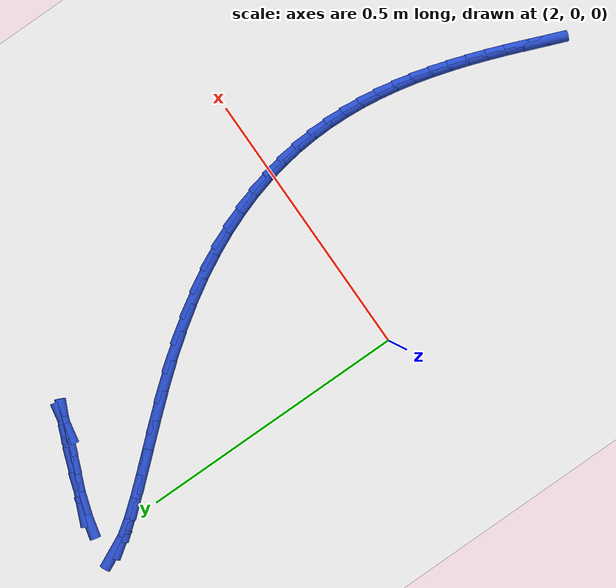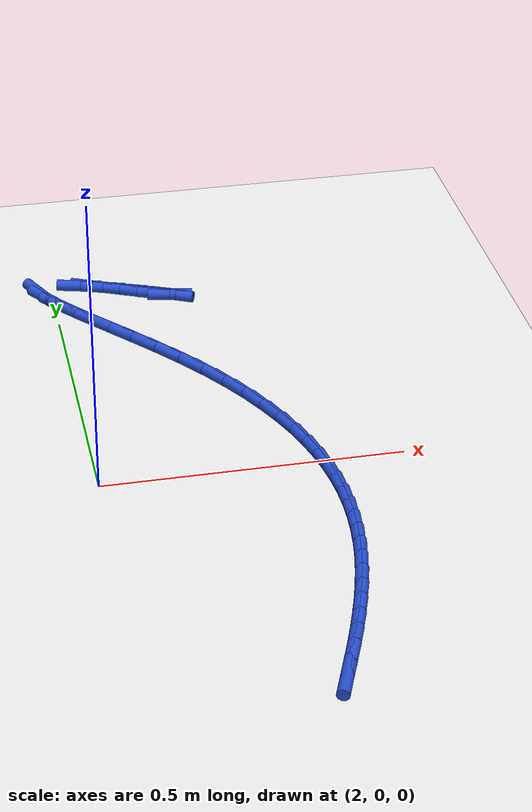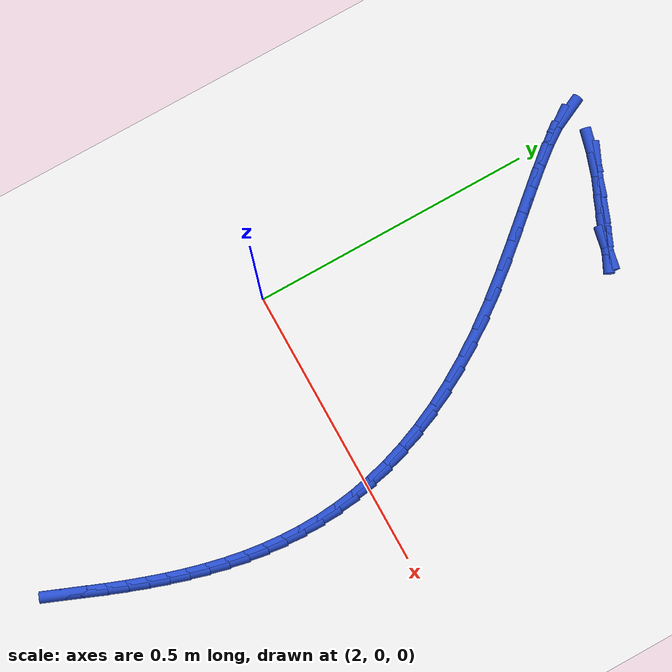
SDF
<sdf version="1.6">
 <world name="default">
  <model name="ground_plane">
   <static>1</static>
   <link name="link">
    <collision name="collision">
     <geometry><plane><normal>0 0 1</normal><size>100 100</size></plane></geometry>
     <surface><friction><ode><mu>100</mu><mu2>50</mu2></ode></friction></surface>
    </collision>
    <visual name="visual">
     <cast_shadows>0</cast_shadows>
     <geometry><plane><normal>0 0 1</normal><size>100 100</size></plane></geometry>
     <material>
      <script><uri>file://media/materials/scripts/gazebo.material</uri><name>Gazebo/WhiteGlow</name></script>
     </material>
    </visual>
   </link>
  </model>
  <model name="line">
   <link name="link_110">
    <pose>2.073734183545537 0.6070631061232256 0.01 0 1.57 -0.4170276419890811</pose>
    <collision name="collision">
     <geometry><cylinder><radius>0.01</radius><length>0.08</length></cylinder></geometry>
    </collision>
    <visual name="visual">
     <material>
      <script><name>Gazebo/Blue</name><uri>file://media/materials/scripts/gazebo.material</uri></script>
     </material>
     <geometry><cylinder><radius>0.01</radius><length>0.08</length></cylinder></geometry>
    </visual>
   </link>
   <link name="link_111">
    <pose>2.120151989857904 0.5864994546362606 0.01 0 1.57 -0.4030117801642071</pose>
    <collision name="collision">
     <geometry><cylinder><radius>0.01</radius><length>0.08</length></cylinder></geometry>
    </collision>
    <visual name="visual">
     <material>
      <script><name>Gazebo/Blue</name><uri>file://media/materials/scripts/gazebo.material</uri></script>
     </material>
     <geometry><cylinder><radius>0.01</radius><length>0.08</length></cylinder></geometry>
    </visual>
   </link>
   <link name="link_112">
    <pose>2.1596995131612777 0.5696384509629089 0.01 0 1.57 -0.3880269745320749</pose>
    <collision name="collision">
     <geometry><cylinder><radius>0.01</radius><length>0.08</length></cylinder></geometry>
    </collision>
    <visual name="visual">
     <material>
      <script><name>Gazebo/Blue</name><uri>file://media/materials/scripts/gazebo.material</uri></script>
     </material>
     <geometry><cylinder><radius>0.01</radius><length>0.08</length></cylinder></geometry>
    </visual>
   </link>
   <link name="link_113">
    <pose>2.1898419861026137 0.5573177036573054 0.01 0 1.57 -0.3643884784873693</pose>
    <collision name="collision">
     <geometry><cylinder><radius>0.01</radius><length>0.08</length></cylinder></geometry>
    </collision>
    <visual name="visual">
     <material>
      <script><name>Gazebo/Blue</name><uri>file://media/materials/scripts/gazebo.material</uri></script>
     </material>
     <geometry><cylinder><radius>0.01</radius><length>0.08</length></cylinder></geometry>
    </visual>
   </link>
   <link name="link_114">
    <pose>2.2080446413288626 0.5503748212735843 0.01 0 1.57 -0.19269574165638942</pose>
    <collision name="collision">
     <geometry><cylinder><radius>0.01</radius><length>0.08</length></cylinder></geometry>
    </collision>
    <visual name="visual">
     <material>
      <script><name>Gazebo/Blue</name><uri>file://media/materials/scripts/gazebo.material</uri></script>
     </material>
     <geometry><cylinder><radius>0.01</radius><length>0.08</length></cylinder></geometry>
    </visual>
   </link>
   <link name="link_115">
    <pose>2.211772711486979 0.5496474123658807 0.01 0 1.57 -0.4450251546157332</pose>
    <collision name="collision">
     <geometry><cylinder><radius>0.01</radius><length>0.08</length></cylinder></geometry>
    </collision>
    <visual name="visual">
     <material>
      <script><name>Gazebo/Blue</name><uri>file://media/materials/scripts/gazebo.material</uri></script>
     </material>
     <geometry><cylinder><radius>0.01</radius><length>0.08</length></cylinder></geometry>
    </visual>
   </link>
   <link name="link_116">
    <pose>2.198806116004149 0.555831623108319 0.01 0 1.57 -0.4061232374616735</pose>
    <collision name="collision">
     <geometry><cylinder><radius>0.01</radius><length>0.08</length></cylinder></geometry>
    </collision>
    <visual name="visual">
     <material>
      <script><name>Gazebo/Blue</name><uri>file://media/materials/scripts/gazebo.material</uri></script>
     </material>
     <geometry><cylinder><radius>0.01</radius><length>0.08</length></cylinder></geometry>
    </visual>
   </link>
   <link name="link_117">
    <pose>2.17113150740829 0.5677325304789995 0.01 0 1.57 -0.3831711092277104</pose>
    <collision name="collision">
     <geometry><cylinder><radius>0.01</radius><length>0.08</length></cylinder></geometry>
    </collision>
    <visual name="visual">
     <material>
      <script><name>Gazebo/Blue</name><uri>file://media/materials/scripts/gazebo.material</uri></script>
     </material>
     <geometry><cylinder><radius>0.01</radius><length>0.08</length></cylinder></geometry>
    </visual>
   </link>
   <link name="link_118">
    <pose>2.133734971195618 0.5828068646139323 0.01 0 1.57 -0.3566858198810598</pose>
    <collision name="collision">
     <geometry><cylinder><radius>0.01</radius><length>0.08</length></cylinder></geometry>
    </collision>
    <visual name="visual">
     <material>
      <script><name>Gazebo/Blue</name><uri>file://media/materials/scripts/gazebo.material</uri></script>
     </material>
     <geometry><cylinder><radius>0.01</radius><length>0.08</length></cylinder></geometry>
    </visual>
   </link>
   <link name="link_119">
    <pose>2.0916671253317394 0.5984823461155788 0.01 0 1.57 -0.3176035053585841</pose>
    <collision name="collision">
     <geometry><cylinder><radius>0.01</radius><length>0.08</length></cylinder></geometry>
    </collision>
    <visual name="visual">
     <material>
      <script><name>Gazebo/Blue</name><uri>file://media/materials/scripts/gazebo.material</uri></script>
     </material>
     <geometry><cylinder><radius>0.01</radius><length>0.08</length></cylinder></geometry>
    </visual>
   </link>
   <link name="link_120">
    <pose>2.0499785877822605 0.612186695586401 0.01 0 1.57 -0.2474764039259218</pose>
    <collision name="collision">
     <geometry><cylinder><radius>0.01</radius><length>0.08</length></cylinder></geometry>
    </collision>
    <visual name="visual">
     <material>
      <script><name>Gazebo/Blue</name><uri>file://media/materials/scripts/gazebo.material</uri></script>
     </material>
     <geometry><cylinder><radius>0.01</radius><length>0.08</length></cylinder></geometry>
    </visual>
   </link>
   <link name="link_124">
    <pose>1.975263911949227 0.6025011545360595 0.01 0 1.57 -1.1264479691737943</pose>
    <collision name="collision">
     <geometry><cylinder><radius>0.01</radius><length>0.08</length></cylinder></geometry>
    </collision>
    <visual name="visual">
     <material>
      <script><name>Gazebo/Blue</name><uri>file://media/materials/scripts/gazebo.material</uri></script>
     </material>
     <geometry><cylinder><radius>0.01</radius><length>0.08</length></cylinder></geometry>
    </visual>
   </link>
   <link name="link_125">
    <pose>1.9853885479276199 0.5812355375212376 0.01 0 1.57 -0.9666394404703594</pose>
    <collision name="collision">
     <geometry><cylinder><radius>0.01</radius><length>0.08</length></cylinder></geometry>
    </collision>
    <visual name="visual">
     <material>
      <script><name>Gazebo/Blue</name><uri>file://media/materials/scripts/gazebo.material</uri></script>
     </material>
     <geometry><cylinder><radius>0.01</radius><length>0.08</length></cylinder></geometry>
    </visual>
   </link>
   <link name="link_126">
    <pose>2.004148868190864 0.5540567802982717 0.01 0 1.57 -0.897009585339556</pose>
    <collision name="collision">
     <geometry><cylinder><radius>0.01</radius><length>0.08</length></cylinder></geometry>
    </collision>
    <visual name="visual">
     <material>
      <script><name>Gazebo/Blue</name><uri>file://media/materials/scripts/gazebo.material</uri></script>
     </material>
     <geometry><cylinder><radius>0.01</radius><length>0.08</length></cylinder></geometry>
    </visual>
   </link>
   <link name="link_127">
    <pose>2.029793807912081 0.5219378252920874 0.01 0 1.57 -0.8646119984530894</pose>
    <collision name="collision">
     <geometry><cylinder><radius>0.01</radius><length>0.08</length></cylinder></geometry>
    </collision>
    <visual name="visual">
     <material>
      <script><name>Gazebo/Blue</name><uri>file://media/materials/scripts/gazebo.material</uri></script>
     </material>
     <geometry><cylinder><radius>0.01</radius><length>0.08</length></cylinder></geometry>
    </visual>
   </link>
   <link name="link_128">
    <pose>2.060572302264393 0.4858516149276096 0.01 0 1.57 -0.8524661536809892</pose>
    <collision name="collision">
     <geometry><cylinder><radius>0.01</radius><length>0.08</length></cylinder></geometry>
    </collision>
    <visual name="visual">
     <material>
      <script><name>Gazebo/Blue</name><uri>file://media/materials/scripts/gazebo.material</uri></script>
     </material>
     <geometry><cylinder><radius>0.01</radius><length>0.08</length></cylinder></geometry>
    </visual>
   </link>
   <link name="link_129">
    <pose>2.0947332864209236 0.44677109162976303 0.01 0 1.57 -0.8543378685637546</pose>
    <collision name="collision">
     <geometry><cylinder><radius>0.01</radius><length>0.08</length></cylinder></geometry>
    </collision>
    <visual name="visual">
     <material>
      <script><name>Gazebo/Blue</name><uri>file://media/materials/scripts/gazebo.material</uri></script>
     </material>
     <geometry><cylinder><radius>0.01</radius><length>0.08</length></cylinder></geometry>
    </visual>
   </link>
   <link name="link_130">
    <pose>2.130525695554796 0.40566919782347305 0.01 0 1.57 -0.8684410707776754</pose>
    <collision name="collision">
     <geometry><cylinder><radius>0.01</radius><length>0.08</length></cylinder></geometry>
    </collision>
    <visual name="visual">
     <material>
      <script><name>Gazebo/Blue</name><uri>file://media/materials/scripts/gazebo.material</uri></script>
     </material>
     <geometry><cylinder><radius>0.01</radius><length>0.08</length></cylinder></geometry>
    </visual>
   </link>
   <link name="link_131">
    <pose>2.1661984648391326 0.36351887593366444 0.01 0 1.57 -0.8957454795376085</pose>
    <collision name="collision">
     <geometry><cylinder><radius>0.01</radius><length>0.08</length></cylinder></geometry>
    </collision>
    <visual name="visual">
     <material>
      <script><name>Gazebo/Blue</name><uri>file://media/materials/scripts/gazebo.material</uri></script>
     </material>
     <geometry><cylinder><radius>0.01</radius><length>0.08</length></cylinder></geometry>
    </visual>
   </link>
   <link name="link_132">
    <pose>2.2000006130247654 0.32129302366357165 0.01 0 1.57 -0.9364386715122758</pose>
    <collision name="collision">
     <geometry><cylinder><radius>0.01</radius><length>0.08</length></cylinder></geometry>
    </collision>
    <visual name="visual">
     <material>
      <script><name>Gazebo/Blue</name><uri>file://media/materials/scripts/gazebo.material</uri></script>
     </material>
     <geometry><cylinder><radius>0.01</radius><length>0.08</length></cylinder></geometry>
    </visual>
   </link>
   <link name="link_133">
    <pose>2.2305594984973043 0.27976209253709716 0.01 0 1.57 -0.9821833687576157</pose>
    <collision name="collision">
     <geometry><cylinder><radius>0.01</radius><length>0.08</length></cylinder></geometry>
    </collision>
    <visual name="visual">
     <material>
      <script><name>Gazebo/Blue</name><uri>file://media/materials/scripts/gazebo.material</uri></script>
     </material>
     <geometry><cylinder><radius>0.01</radius><length>0.08</length></cylinder></geometry>
    </visual>
   </link>
   <link name="link_134">
    <pose>2.257751277810345 0.23902831326640658 0.01 0 1.57 -1.0308390327248516</pose>
    <collision name="collision">
     <geometry><cylinder><radius>0.01</radius><length>0.08</length></cylinder></geometry>
    </collision>
    <visual name="visual">
     <material>
      <script><name>Gazebo/Blue</name><uri>file://media/materials/scripts/gazebo.material</uri></script>
     </material>
     <geometry><cylinder><radius>0.01</radius><length>0.08</length></cylinder></geometry>
    </visual>
   </link>
   <link name="link_135">
    <pose>2.2817094018971025 0.19905624062561797 0.01 0 1.57 -1.0822918381441748</pose>
    <collision name="collision">
     <geometry><cylinder><radius>0.01</radius><length>0.08</length></cylinder></geometry>
    </collision>
    <visual name="visual">
     <material>
      <script><name>Gazebo/Blue</name><uri>file://media/materials/scripts/gazebo.material</uri></script>
     </material>
     <geometry><cylinder><radius>0.01</radius><length>0.08</length></cylinder></geometry>
    </visual>
   </link>
   <link name="link_136">
    <pose>2.302567321690794 0.15981042938885082 0.01 0 1.57 -1.1363259977892417</pose>
    <collision name="collision">
     <geometry><cylinder><radius>0.01</radius><length>0.08</length></cylinder></geometry>
    </collision>
    <visual name="visual">
     <material>
      <script><name>Gazebo/Blue</name><uri>file://media/materials/scripts/gazebo.material</uri></script>
     </material>
     <geometry><cylinder><radius>0.01</radius><length>0.08</length></cylinder></geometry>
    </visual>
   </link>
   <link name="link_137">
    <pose>2.320458488124631 0.12125543433022457 0.01 0 1.57 -1.1926118763902933</pose>
    <collision name="collision">
     <geometry><cylinder><radius>0.01</radius><length>0.08</length></cylinder></geometry>
    </collision>
    <visual name="visual">
     <material>
      <script><name>Gazebo/Blue</name><uri>file://media/materials/scripts/gazebo.material</uri></script>
     </material>
     <geometry><cylinder><radius>0.01</radius><length>0.08</length></cylinder></geometry>
    </visual>
   </link>
   <link name="link_138">
    <pose>2.3355163521318305 0.08335581022385867 0.01 0 1.57 -1.2507016938167785</pose>
    <collision name="collision">
     <geometry><cylinder><radius>0.01</radius><length>0.08</length></cylinder></geometry>
    </collision>
    <visual name="visual">
     <material>
      <script><name>Gazebo/Blue</name><uri>file://media/materials/scripts/gazebo.material</uri></script>
     </material>
     <geometry><cylinder><radius>0.01</radius><length>0.08</length></cylinder></geometry>
    </visual>
   </link>
   <link name="link_139">
    <pose>2.3478743646456053 0.04607611184387254 0.01 0 1.57 -1.3100356775492352</pose>
    <collision name="collision">
     <geometry><cylinder><radius>0.01</radius><length>0.08</length></cylinder></geometry>
    </collision>
    <visual name="visual">
     <material>
      <script><name>Gazebo/Blue</name><uri>file://media/materials/scripts/gazebo.material</uri></script>
     </material>
     <geometry><cylinder><radius>0.01</radius><length>0.08</length></cylinder></geometry>
    </visual>
   </link>
   <link name="link_140">
    <pose>2.3576659765991725 0.009380893964384593 0.01 0 1.57 -1.3699602441335308</pose>
    <collision name="collision">
     <geometry><cylinder><radius>0.01</radius><length>0.08</length></cylinder></geometry>
    </collision>
    <visual name="visual">
     <material>
      <script><name>Gazebo/Blue</name><uri>file://media/materials/scripts/gazebo.material</uri></script>
     </material>
     <geometry><cylinder><radius>0.01</radius><length>0.08</length></cylinder></geometry>
    </visual>
   </link>
   <link name="link_141">
    <pose>2.3650246389257457 -0.026765288640483647 0.01 0 1.57 -1.4297576531906178</pose>
    <collision name="collision">
     <geometry><cylinder><radius>0.01</radius><length>0.08</length></cylinder></geometry>
    </collision>
    <visual name="visual">
     <material>
      <script><name>Gazebo/Blue</name><uri>file://media/materials/scripts/gazebo.material</uri></script>
     </material>
     <geometry><cylinder><radius>0.01</radius><length>0.08</length></cylinder></geometry>
    </visual>
   </link>
   <link name="link_142">
    <pose>2.370083802558539 -0.06239788119661377 0.01 0 1.57 -1.4886840783682007</pose>
    <collision name="collision">
     <geometry><cylinder><radius>0.01</radius><length>0.08</length></cylinder></geometry>
    </collision>
    <visual name="visual">
     <material>
      <script><name>Gazebo/Blue</name><uri>file://media/materials/scripts/gazebo.material</uri></script>
     </material>
     <geometry><cylinder><radius>0.01</radius><length>0.08</length></cylinder></geometry>
    </visual>
   </link>
   <link name="link_143">
    <pose>2.3729769184307674 -0.0975523289298864 0.01 0 1.57 -1.5460109767522099</pose>
    <collision name="collision">
     <geometry><cylinder><radius>0.01</radius><length>0.08</length></cylinder></geometry>
    </collision>
    <visual name="visual">
     <material>
      <script><name>Gazebo/Blue</name><uri>file://media/materials/scripts/gazebo.material</uri></script>
     </material>
     <geometry><cylinder><radius>0.01</radius><length>0.08</length></cylinder></geometry>
    </visual>
   </link>
   <link name="link_144">
    <pose>2.373837437475647 -0.13226407706618196 0.01 0 1.57 1.5405288735426454</pose>
    <collision name="collision">
     <geometry><cylinder><radius>0.01</radius><length>0.08</length></cylinder></geometry>
    </collision>
    <visual name="visual">
     <material>
      <script><name>Gazebo/Blue</name><uri>file://media/materials/scripts/gazebo.material</uri></script>
     </material>
     <geometry><cylinder><radius>0.01</radius><length>0.08</length></cylinder></geometry>
    </visual>
   </link>
   <link name="link_145">
    <pose>2.3727988106263918 -0.16656857083138119 0.01 0 1.57 1.4883400344814053</pose>
    <collision name="collision">
     <geometry><cylinder><radius>0.01</radius><length>0.08</length></cylinder></geometry>
    </collision>
    <visual name="visual">
     <material>
      <script><name>Gazebo/Blue</name><uri>file://media/materials/scripts/gazebo.material</uri></script>
     </material>
     <geometry><cylinder><radius>0.01</radius><length>0.08</length></cylinder></geometry>
    </visual>
   </link>
   <link name="link_146">
    <pose>2.3699944888162157 -0.20050125545136452 0.01 0 1.57 1.439500900108657</pose>
    <collision name="collision">
     <geometry><cylinder><radius>0.01</radius><length>0.08</length></cylinder></geometry>
    </collision>
    <visual name="visual">
     <material>
      <script><name>Gazebo/Blue</name><uri>file://media/materials/scripts/gazebo.material</uri></script>
     </material>
     <geometry><cylinder><radius>0.01</radius><length>0.08</length></cylinder></geometry>
    </visual>
   </link>
   <link name="link_147">
    <pose>2.3655579229783354 -0.23409757615201254 0.01 0 1.57 1.3943857819702519</pose>
    <collision name="collision">
     <geometry><cylinder><radius>0.01</radius><length>0.08</length></cylinder></geometry>
    </collision>
    <visual name="visual">
     <material>
      <script><name>Gazebo/Blue</name><uri>file://media/materials/scripts/gazebo.material</uri></script>
     </material>
     <geometry><cylinder><radius>0.01</radius><length>0.08</length></cylinder></geometry>
    </visual>
   </link>
   <link name="link_148">
    <pose>2.359622564045964 -0.2673929781592059 0.01 0 1.57 1.353261014244099</pose>
    <collision name="collision">
     <geometry><cylinder><radius>0.01</radius><length>0.08</length></cylinder></geometry>
    </collision>
    <visual name="visual">
     <material>
      <script><name>Gazebo/Blue</name><uri>file://media/materials/scripts/gazebo.material</uri></script>
     </material>
     <geometry><cylinder><radius>0.01</radius><length>0.08</length></cylinder></geometry>
    </visual>
   </link>
   <link name="link_149">
    <pose>2.352321862952317 -0.300422906698826 0.01 0 1.57 1.3162963876414173</pose>
    <collision name="collision">
     <geometry><cylinder><radius>0.01</radius><length>0.08</length></cylinder></geometry>
    </collision>
    <visual name="visual">
     <material>
      <script><name>Gazebo/Blue</name><uri>file://media/materials/scripts/gazebo.material</uri></script>
     </material>
     <geometry><cylinder><radius>0.01</radius><length>0.08</length></cylinder></geometry>
    </visual>
   </link>
   <link name="link_150">
    <pose>2.3437892706306083 -0.33322280699675144 0.01 0 1.57 1.2835813479802833</pose>
    <collision name="collision">
     <geometry><cylinder><radius>0.01</radius><length>0.08</length></cylinder></geometry>
    </collision>
    <visual name="visual">
     <material>
      <script><name>Gazebo/Blue</name><uri>file://media/materials/scripts/gazebo.material</uri></script>
     </material>
     <geometry><cylinder><radius>0.01</radius><length>0.08</length></cylinder></geometry>
    </visual>
   </link>
   <link name="link_151">
    <pose>2.334158238014054 -0.3658281242788639 0.01 0 1.57 1.2551430354004927</pose>
    <collision name="collision">
     <geometry><cylinder><radius>0.01</radius><length>0.08</length></cylinder></geometry>
    </collision>
    <visual name="visual">
     <material>
      <script><name>Gazebo/Blue</name><uri>file://media/materials/scripts/gazebo.material</uri></script>
     </material>
     <geometry><cylinder><radius>0.01</radius><length>0.08</length></cylinder></geometry>
    </visual>
   </link>
   <link name="link_152">
    <pose>2.323562216035868 -0.3982743037710439 0.01 0 1.57 1.2309639395314893</pose>
    <collision name="collision">
     <geometry><cylinder><radius>0.01</radius><length>0.08</length></cylinder></geometry>
    </collision>
    <visual name="visual">
     <material>
      <script><name>Gazebo/Blue</name><uri>file://media/materials/scripts/gazebo.material</uri></script>
     </material>
     <geometry><cylinder><radius>0.01</radius><length>0.08</length></cylinder></geometry>
    </visual>
   </link>
   <link name="link_153">
    <pose>2.3121346556292655 -0.4305967906991718 0.01 0 1.57 1.2109977433430477</pose>
    <collision name="collision">
     <geometry><cylinder><radius>0.01</radius><length>0.08</length></cylinder></geometry>
    </collision>
    <visual name="visual">
     <material>
      <script><name>Gazebo/Blue</name><uri>file://media/materials/scripts/gazebo.material</uri></script>
     </material>
     <geometry><cylinder><radius>0.01</radius><length>0.08</length></cylinder></geometry>
    </visual>
   </link>
   <link name="link_154">
    <pose>2.3000090077274615 -0.4628310302891284 0.01 0 1.57 1.1951826242282138</pose>
    <collision name="collision">
     <geometry><cylinder><radius>0.01</radius><length>0.08</length></cylinder></geometry>
    </collision>
    <visual name="visual">
     <material>
      <script><name>Gazebo/Blue</name><uri>file://media/materials/scripts/gazebo.material</uri></script>
     </material>
     <geometry><cylinder><radius>0.01</radius><length>0.08</length></cylinder></geometry>
    </visual>
   </link>
   <link name="link_155">
    <pose>2.2873187232636703 -0.4950124677667943 0.01 0 1.57 1.1849196273144615</pose>
    <collision name="collision">
     <geometry><cylinder><radius>0.01</radius><length>0.08</length></cylinder></geometry>
    </collision>
    <visual name="visual">
     <material>
      <script><name>Gazebo/Blue</name><uri>file://media/materials/scripts/gazebo.material</uri></script>
     </material>
     <geometry><cylinder><radius>0.01</radius><length>0.08</length></cylinder></geometry>
    </visual>
   </link>
   <link name="link_156">
    <pose>2.2742398409373568 -0.5272071908341119 0.01 0 1.57 1.1908114137597914</pose>
    <collision name="collision">
     <geometry><cylinder><radius>0.01</radius><length>0.08</length></cylinder></geometry>
    </collision>
    <visual name="visual">
     <material>
      <script><name>Gazebo/Blue</name><uri>file://media/materials/scripts/gazebo.material</uri></script>
     </material>
     <geometry><cylinder><radius>0.01</radius><length>0.08</length></cylinder></geometry>
    </visual>
   </link>
  </model>
 </world>
</sdf>
